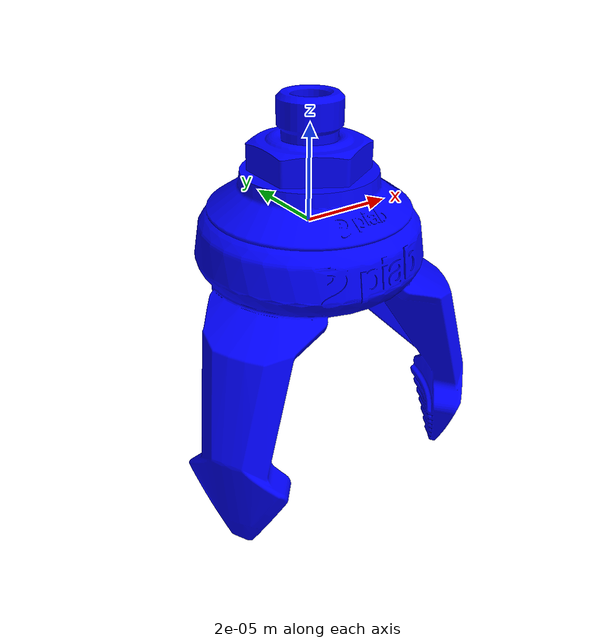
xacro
<?xml version="1.0"?>
<robot name="pisoftgrip" xmlns:xacro="http://ros.org/wiki/xacro">

    <link name="pisoftgrip_link">
        <inertial>
            <origin xyz="0 0 0" rpy="0 0 0"/>
            <mass value="0.055"/>
            <inertia ixx="9.6794e-05" ixy="0.0" ixz="0.0" iyy="9.6794e-05" iyz="0.0" izz="3.8672e-05"/>
        </inertial>

        <visual>
            <geometry>
                <mesh filename="package://pisoftgrip_description/meshes/pisoftgrip.obj" scale="0.001 0.001 0.001"/>
            </geometry>
            <material name="blue">
                <color rgba="0 0 1 1"/>
            </material>
        </visual>

        <collision>
            <geometry>
                <mesh filename="package://pisoftgrip_description/meshes/pisoftgrip_605_faces.obj" scale="0.001 0.001 0.001"/>
            </geometry>
        </collision>
    </link>
</robot>
